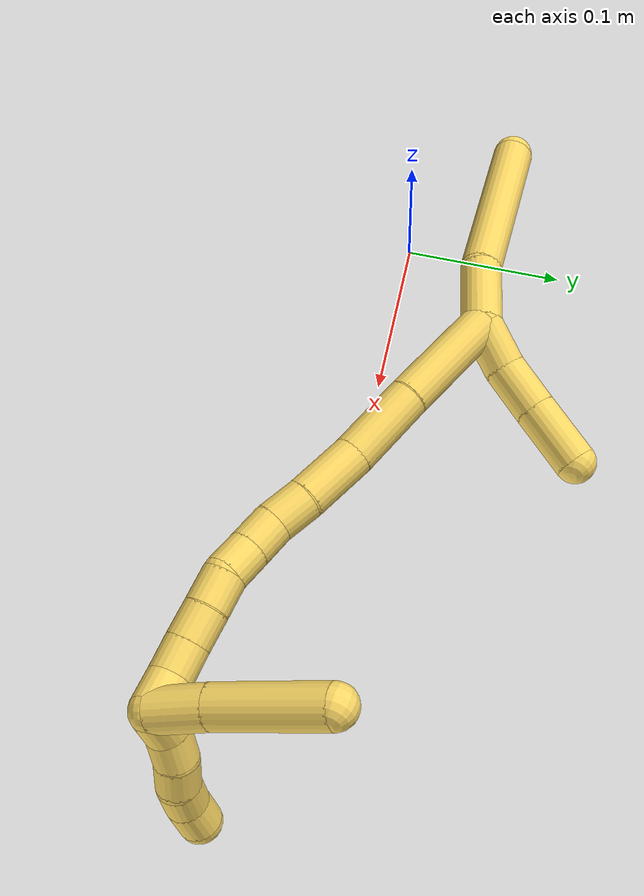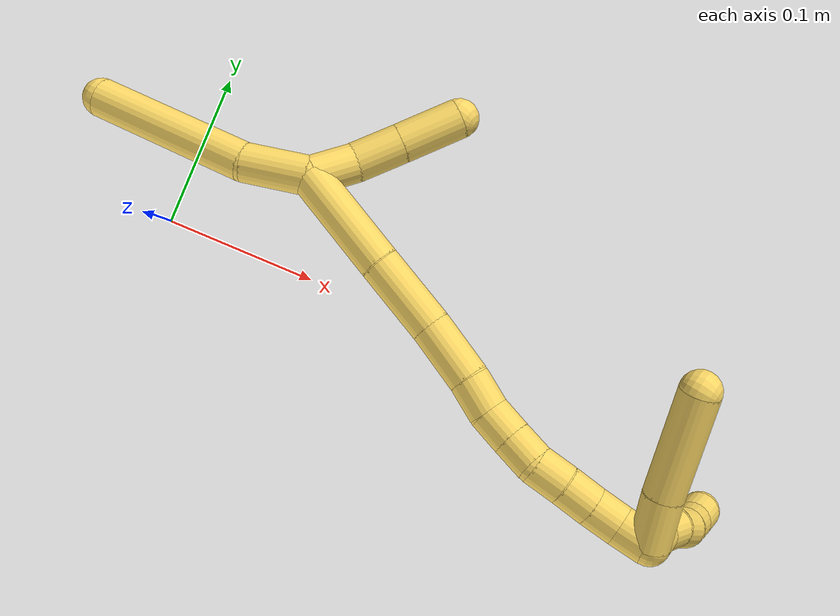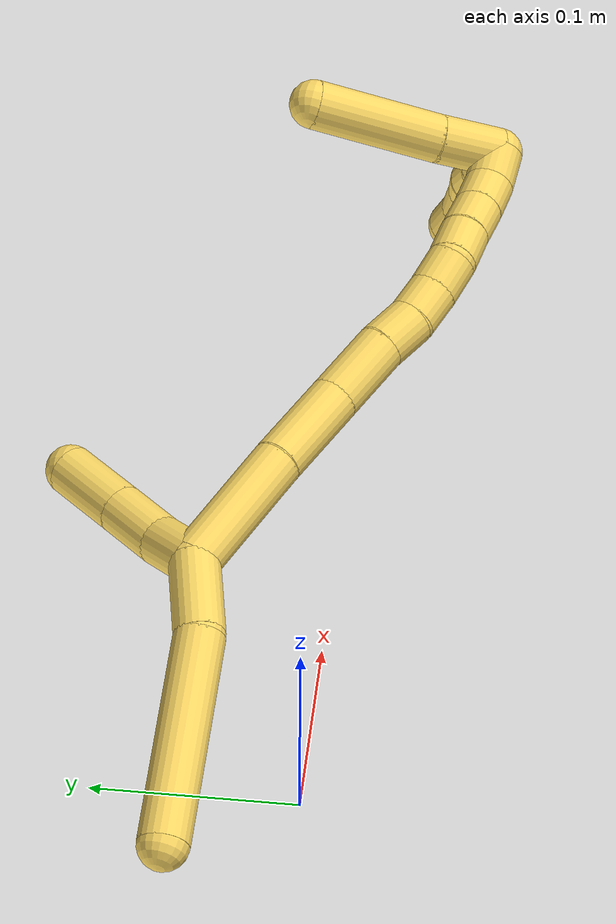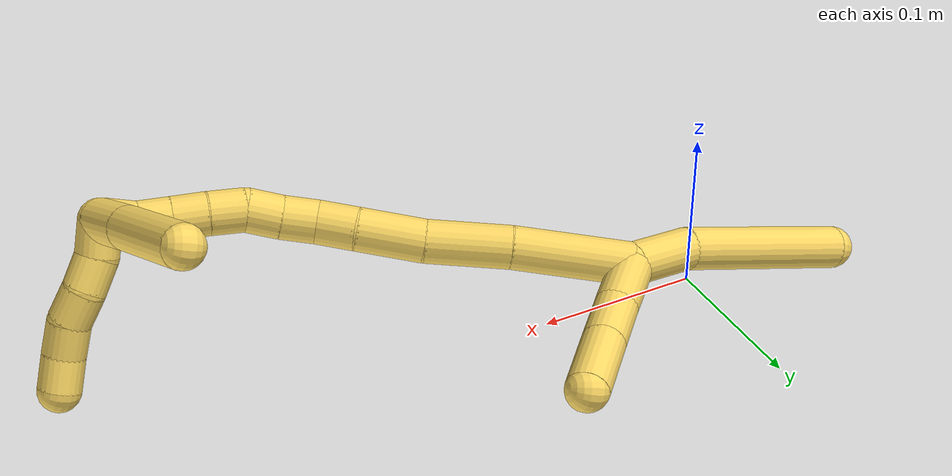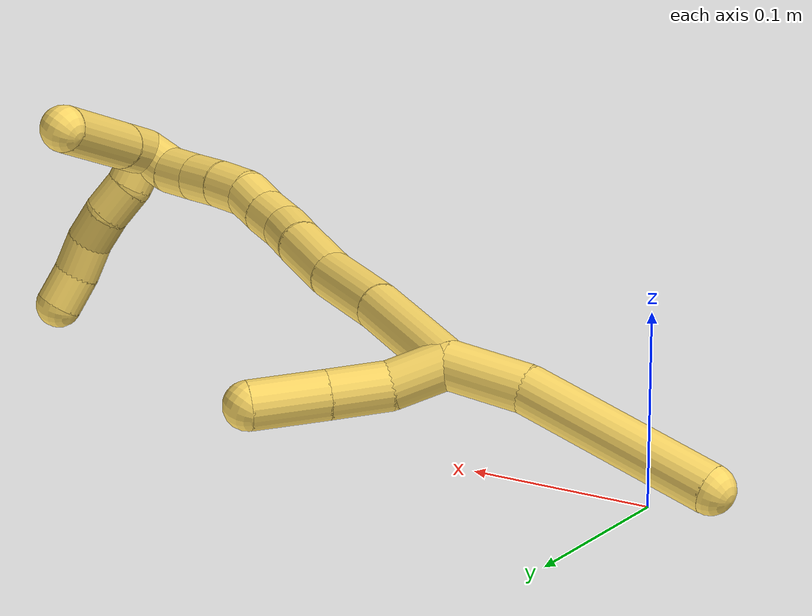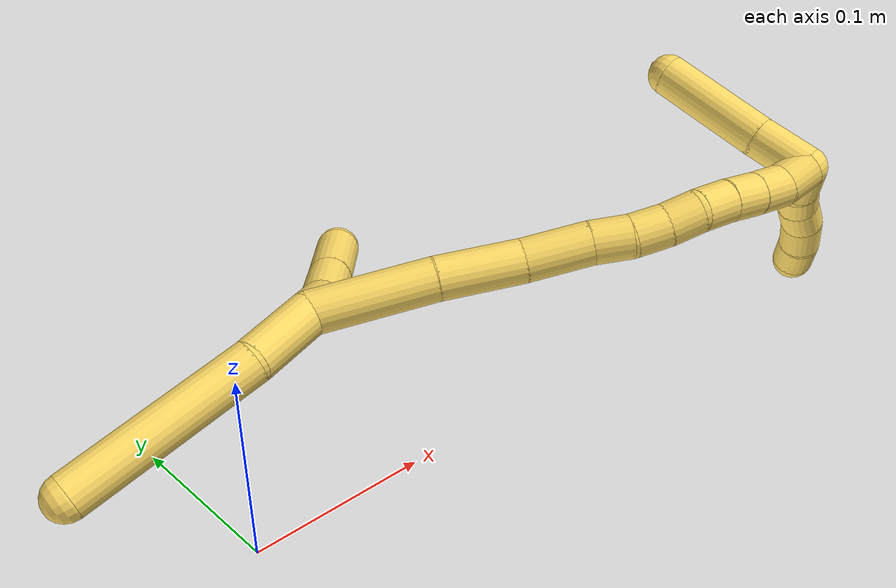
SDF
<sdf version="1.7">
 <world name="default">
  <model name="5">
   <static>0</static>
   <link name="5">
    <collision name="collision-cylinder-e_1_2_8">
     <pose>0.001297 -0.006946 -0.020059 2.80825 0.061003 0.358824</pose>
     <geometry><cylinder><radius>0.0125</radius><length>0.042534</length></cylinder></geometry>
     <surface>
      <friction><ode><mu>1.16</mu><mu2>1.16</mu2><slip1>0</slip1><slip2>0</slip2></ode></friction>
      <contact><ode><kp>1e+06</kp><kd>1</kd><max_vel>0</max_vel><min_depth>0.001</min_depth></ode></contact>
     </surface>
    </collision>
    <visual name="visual-cylinder-e_1_2_8">
     <pose>0.001297 -0.006946 -0.020059 2.80825 0.061003 0.358824</pose>
     <geometry><cylinder><radius>0.0125</radius><length>0.042534</length></cylinder></geometry>
     <material><ambient>1 0.858824 0.4 1</ambient></material>
    </visual>
    <collision name="collision-cylinder-e_2_8_6">
     <pose>0.00397 -0.019077 -0.093582 3.04489 0.025633 0.517871</pose>
     <geometry><cylinder><radius>0.0125</radius><length>0.107466</length></cylinder></geometry>
     <surface>
      <friction><ode><mu>1.16</mu><mu2>1.16</mu2><slip1>0</slip1><slip2>0</slip2></ode></friction>
      <contact><ode><kp>1e+06</kp><kd>1</kd><max_vel>0</max_vel><min_depth>0.001</min_depth></ode></contact>
     </surface>
    </collision>
    <visual name="visual-cylinder-e_2_8_6">
     <pose>0.00397 -0.019077 -0.093582 3.04489 0.025633 0.517871</pose>
     <geometry><cylinder><radius>0.0125</radius><length>0.107466</length></cylinder></geometry>
     <material><ambient>1 0.858824 0.4 1</ambient></material>
    </visual>
    <collision name="collision-cylinder-e_1_2_9">
     <pose>0.000793 0.01289 0.007146 -1.06459 0.05372 -0.031646</pose>
     <geometry><cylinder><radius>0.0125</radius><length>0.02952</length></cylinder></geometry>
     <surface>
      <friction><ode><mu>1.16</mu><mu2>1.16</mu2><slip1>0</slip1><slip2>0</slip2></ode></friction>
      <contact><ode><kp>1e+06</kp><kd>1</kd><max_vel>0</max_vel><min_depth>0.001</min_depth></ode></contact>
     </surface>
    </collision>
    <visual name="visual-cylinder-e_1_2_9">
     <pose>0.000793 0.01289 0.007146 -1.06459 0.05372 -0.031646</pose>
     <geometry><cylinder><radius>0.0125</radius><length>0.02952</length></cylinder></geometry>
     <material><ambient>1 0.858824 0.4 1</ambient></material>
    </visual>
    <collision name="collision-cylinder-e_2_9_10">
     <pose>-0.001634 0.038548 0.022601 -0.993904 -0.208241 0.113229</pose>
     <geometry><cylinder><radius>0.0125</radius><length>0.031138</length></cylinder></geometry>
     <surface>
      <friction><ode><mu>1.16</mu><mu2>1.16</mu2><slip1>0</slip1><slip2>0</slip2></ode></friction>
      <contact><ode><kp>1e+06</kp><kd>1</kd><max_vel>0</max_vel><min_depth>0.001</min_depth></ode></contact>
     </surface>
    </collision>
    <visual name="visual-cylinder-e_2_9_10">
     <pose>-0.001634 0.038548 0.022601 -0.993904 -0.208241 0.113229</pose>
     <geometry><cylinder><radius>0.0125</radius><length>0.031138</length></cylinder></geometry>
     <material><ambient>1 0.858824 0.4 1</ambient></material>
    </visual>
    <collision name="collision-cylinder-e_3_10_5">
     <pose>-0.0092 0.067422 0.041331 -0.996488 -0.222859 0.121595</pose>
     <geometry><cylinder><radius>0.0125</radius><length>0.039342</length></cylinder></geometry>
     <surface>
      <friction><ode><mu>1.16</mu><mu2>1.16</mu2><slip1>0</slip1><slip2>0</slip2></ode></friction>
      <contact><ode><kp>1e+06</kp><kd>1</kd><max_vel>0</max_vel><min_depth>0.001</min_depth></ode></contact>
     </surface>
    </collision>
    <visual name="visual-cylinder-e_3_10_5">
     <pose>-0.0092 0.067422 0.041331 -0.996488 -0.222859 0.121595</pose>
     <geometry><cylinder><radius>0.0125</radius><length>0.039342</length></cylinder></geometry>
     <material><ambient>1 0.858824 0.4 1</ambient></material>
    </visual>
    <collision name="collision-cylinder-e_1_2_11">
     <pose>0.010355 -0.007677 0.03203 0.235232 0.304602 0.036269</pose>
     <geometry><cylinder><radius>0.0125</radius><length>0.069053</length></cylinder></geometry>
     <surface>
      <friction><ode><mu>1.16</mu><mu2>1.16</mu2><slip1>0</slip1><slip2>0</slip2></ode></friction>
      <contact><ode><kp>1e+06</kp><kd>1</kd><max_vel>0</max_vel><min_depth>0.001</min_depth></ode></contact>
     </surface>
    </collision>
    <visual name="visual-cylinder-e_1_2_11">
     <pose>0.010355 -0.007677 0.03203 0.235232 0.304602 0.036269</pose>
     <geometry><cylinder><radius>0.0125</radius><length>0.069053</length></cylinder></geometry>
     <material><ambient>1 0.858824 0.4 1</ambient></material>
    </visual>
    <collision name="collision-cylinder-e_2_11_12">
     <pose>0.029459 -0.019737 0.086263 0.194926 0.368893 0.036478</pose>
     <geometry><cylinder><radius>0.0125</radius><length>0.048526</length></cylinder></geometry>
     <surface>
      <friction><ode><mu>1.16</mu><mu2>1.16</mu2><slip1>0</slip1><slip2>0</slip2></ode></friction>
      <contact><ode><kp>1e+06</kp><kd>1</kd><max_vel>0</max_vel><min_depth>0.001</min_depth></ode></contact>
     </surface>
    </collision>
    <visual name="visual-cylinder-e_2_11_12">
     <pose>0.029459 -0.019737 0.086263 0.194926 0.368893 0.036478</pose>
     <geometry><cylinder><radius>0.0125</radius><length>0.048526</length></cylinder></geometry>
     <material><ambient>1 0.858824 0.4 1</ambient></material>
    </visual>
    <collision name="collision-cylinder-e_3_12_13">
     <pose>0.043994 -0.029288 0.126079 0.285373 0.305375 0.044208</pose>
     <geometry><cylinder><radius>0.0125</radius><length>0.038493</length></cylinder></geometry>
     <surface>
      <friction><ode><mu>1.16</mu><mu2>1.16</mu2><slip1>0</slip1><slip2>0</slip2></ode></friction>
      <contact><ode><kp>1e+06</kp><kd>1</kd><max_vel>0</max_vel><min_depth>0.001</min_depth></ode></contact>
     </surface>
    </collision>
    <visual name="visual-cylinder-e_3_12_13">
     <pose>0.043994 -0.029288 0.126079 0.285373 0.305375 0.044208</pose>
     <geometry><cylinder><radius>0.0125</radius><length>0.038493</length></cylinder></geometry>
     <material><ambient>1 0.858824 0.4 1</ambient></material>
    </visual>
    <collision name="collision-cylinder-e_4_13_14">
     <pose>0.054145 -0.03799 0.153493 0.346146 0.396715 0.07025</pose>
     <geometry><cylinder><radius>0.0125</radius><length>0.022591</length></cylinder></geometry>
     <surface>
      <friction><ode><mu>1.16</mu><mu2>1.16</mu2><slip1>0</slip1><slip2>0</slip2></ode></friction>
      <contact><ode><kp>1e+06</kp><kd>1</kd><max_vel>0</max_vel><min_depth>0.001</min_depth></ode></contact>
     </surface>
    </collision>
    <visual name="visual-cylinder-e_4_13_14">
     <pose>0.054145 -0.03799 0.153493 0.346146 0.396715 0.07025</pose>
     <geometry><cylinder><radius>0.0125</radius><length>0.022591</length></cylinder></geometry>
     <material><ambient>1 0.858824 0.4 1</ambient></material>
    </visual>
    <collision name="collision-cylinder-e_5_14_15">
     <pose>0.061191 -0.043517 0.172953 0.203457 0.26547 0.027258</pose>
     <geometry><cylinder><radius>0.0125</radius><length>0.020442</length></cylinder></geometry>
     <surface>
      <friction><ode><mu>1.16</mu><mu2>1.16</mu2><slip1>0</slip1><slip2>0</slip2></ode></friction>
      <contact><ode><kp>1e+06</kp><kd>1</kd><max_vel>0</max_vel><min_depth>0.001</min_depth></ode></contact>
     </surface>
    </collision>
    <visual name="visual-cylinder-e_5_14_15">
     <pose>0.061191 -0.043517 0.172953 0.203457 0.26547 0.027258</pose>
     <geometry><cylinder><radius>0.0125</radius><length>0.020442</length></cylinder></geometry>
     <material><ambient>1 0.858824 0.4 1</ambient></material>
    </visual>
    <collision name="collision-cylinder-e_6_15_16">
     <pose>0.065469 -0.047784 0.192304 0.230475 0.158946 0.018436</pose>
     <geometry><cylinder><radius>0.0125</radius><length>0.020164</length></cylinder></geometry>
     <surface>
      <friction><ode><mu>1.16</mu><mu2>1.16</mu2><slip1>0</slip1><slip2>0</slip2></ode></friction>
      <contact><ode><kp>1e+06</kp><kd>1</kd><max_vel>0</max_vel><min_depth>0.001</min_depth></ode></contact>
     </surface>
    </collision>
    <visual name="visual-cylinder-e_6_15_16">
     <pose>0.065469 -0.047784 0.192304 0.230475 0.158946 0.018436</pose>
     <geometry><cylinder><radius>0.0125</radius><length>0.020164</length></cylinder></geometry>
     <material><ambient>1 0.858824 0.4 1</ambient></material>
    </visual>
    <collision name="collision-cylinder-e_7_16_17">
     <pose>0.069799 -0.049399 0.211943 -0.066186 0.267749 -0.008917</pose>
     <geometry><cylinder><radius>0.0125</radius><length>0.020675</length></cylinder></geometry>
     <surface>
      <friction><ode><mu>1.16</mu><mu2>1.16</mu2><slip1>0</slip1><slip2>0</slip2></ode></friction>
      <contact><ode><kp>1e+06</kp><kd>1</kd><max_vel>0</max_vel><min_depth>0.001</min_depth></ode></contact>
     </surface>
    </collision>
    <visual name="visual-cylinder-e_7_16_17">
     <pose>0.069799 -0.049399 0.211943 -0.066186 0.267749 -0.008917</pose>
     <geometry><cylinder><radius>0.0125</radius><length>0.020675</length></cylinder></geometry>
     <material><ambient>1 0.858824 0.4 1</ambient></material>
    </visual>
    <collision name="collision-cylinder-e_8_17_18">
     <pose>0.07587 -0.04801 0.231298 -0.077445 0.339849 -0.013294</pose>
     <geometry><cylinder><radius>0.0125</radius><length>0.020016</length></cylinder></geometry>
     <surface>
      <friction><ode><mu>1.16</mu><mu2>1.16</mu2><slip1>0</slip1><slip2>0</slip2></ode></friction>
      <contact><ode><kp>1e+06</kp><kd>1</kd><max_vel>0</max_vel><min_depth>0.001</min_depth></ode></contact>
     </surface>
    </collision>
    <visual name="visual-cylinder-e_8_17_18">
     <pose>0.07587 -0.04801 0.231298 -0.077445 0.339849 -0.013294</pose>
     <geometry><cylinder><radius>0.0125</radius><length>0.020016</length></cylinder></geometry>
     <material><ambient>1 0.858824 0.4 1</ambient></material>
    </visual>
    <collision name="collision-cylinder-e_9_18_19">
     <pose>0.082109 -0.046394 0.250251 -0.09252 0.293962 -0.013707</pose>
     <geometry><cylinder><radius>0.0125</radius><length>0.020033</length></cylinder></geometry>
     <surface>
      <friction><ode><mu>1.16</mu><mu2>1.16</mu2><slip1>0</slip1><slip2>0</slip2></ode></friction>
      <contact><ode><kp>1e+06</kp><kd>1</kd><max_vel>0</max_vel><min_depth>0.001</min_depth></ode></contact>
     </surface>
    </collision>
    <visual name="visual-cylinder-e_9_18_19">
     <pose>0.082109 -0.046394 0.250251 -0.09252 0.293962 -0.013707</pose>
     <geometry><cylinder><radius>0.0125</radius><length>0.020033</length></cylinder></geometry>
     <material><ambient>1 0.858824 0.4 1</ambient></material>
    </visual>
    <collision name="collision-cylinder-e_10_19_1">
     <pose>0.08505 -0.045737 0.269797 0.02289 0.00392 4.5e-05</pose>
     <geometry><cylinder><radius>0.0125</radius><length>0.020006</length></cylinder></geometry>
     <surface>
      <friction><ode><mu>1.16</mu><mu2>1.16</mu2><slip1>0</slip1><slip2>0</slip2></ode></friction>
      <contact><ode><kp>1e+06</kp><kd>1</kd><max_vel>0</max_vel><min_depth>0.001</min_depth></ode></contact>
     </surface>
    </collision>
    <visual name="visual-cylinder-e_10_19_1">
     <pose>0.08505 -0.045737 0.269797 0.02289 0.00392 4.5e-05</pose>
     <geometry><cylinder><radius>0.0125</radius><length>0.020006</length></cylinder></geometry>
     <material><ambient>1 0.858824 0.4 1</ambient></material>
    </visual>
    <collision name="collision-cylinder-e_1_1_20">
     <pose>0.071521 -0.037242 0.276655 -1.91651 -0.97127 1.28839</pose>
     <geometry><cylinder><radius>0.0125</radius><length>0.032869</length></cylinder></geometry>
     <surface>
      <friction><ode><mu>1.16</mu><mu2>1.16</mu2><slip1>0</slip1><slip2>0</slip2></ode></friction>
      <contact><ode><kp>1e+06</kp><kd>1</kd><max_vel>0</max_vel><min_depth>0.001</min_depth></ode></contact>
     </surface>
    </collision>
    <visual name="visual-cylinder-e_1_1_20">
     <pose>0.071521 -0.037242 0.276655 -1.91651 -0.97127 1.28839</pose>
     <geometry><cylinder><radius>0.0125</radius><length>0.032869</length></cylinder></geometry>
     <material><ambient>1 0.858824 0.4 1</ambient></material>
    </visual>
    <collision name="collision-cylinder-e_2_20_4">
     <pose>0.030209 -0.010212 0.268837 -1.82084 -0.972946 1.1956</pose>
     <geometry><cylinder><radius>0.0125</radius><length>0.067131</length></cylinder></geometry>
     <surface>
      <friction><ode><mu>1.16</mu><mu2>1.16</mu2><slip1>0</slip1><slip2>0</slip2></ode></friction>
      <contact><ode><kp>1e+06</kp><kd>1</kd><max_vel>0</max_vel><min_depth>0.001</min_depth></ode></contact>
     </surface>
    </collision>
    <visual name="visual-cylinder-e_2_20_4">
     <pose>0.030209 -0.010212 0.268837 -1.82084 -0.972946 1.1956</pose>
     <geometry><cylinder><radius>0.0125</radius><length>0.067131</length></cylinder></geometry>
     <material><ambient>1 0.858824 0.4 1</ambient></material>
    </visual>
    <collision name="collision-cylinder-e_1_1_21">
     <pose>0.091027 -0.037926 0.279492 -1.60878 0.635706 -0.658613</pose>
     <geometry><cylinder><radius>0.0125</radius><length>0.02</length></cylinder></geometry>
     <surface>
      <friction><ode><mu>1.16</mu><mu2>1.16</mu2><slip1>0</slip1><slip2>0</slip2></ode></friction>
      <contact><ode><kp>1e+06</kp><kd>1</kd><max_vel>0</max_vel><min_depth>0.001</min_depth></ode></contact>
     </surface>
    </collision>
    <visual name="visual-cylinder-e_1_1_21">
     <pose>0.091027 -0.037926 0.279492 -1.60878 0.635706 -0.658613</pose>
     <geometry><cylinder><radius>0.0125</radius><length>0.02</length></cylinder></geometry>
     <material><ambient>1 0.858824 0.4 1</ambient></material>
    </visual>
    <collision name="collision-cylinder-e_2_21_22">
     <pose>0.102849 -0.022179 0.281632 -1.26344 0.629184 -0.467514</pose>
     <geometry><cylinder><radius>0.0125</radius><length>0.02</length></cylinder></geometry>
     <surface>
      <friction><ode><mu>1.16</mu><mu2>1.16</mu2><slip1>0</slip1><slip2>0</slip2></ode></friction>
      <contact><ode><kp>1e+06</kp><kd>1</kd><max_vel>0</max_vel><min_depth>0.001</min_depth></ode></contact>
     </surface>
    </collision>
    <visual name="visual-cylinder-e_2_21_22">
     <pose>0.102849 -0.022179 0.281632 -1.26344 0.629184 -0.467514</pose>
     <geometry><cylinder><radius>0.0125</radius><length>0.02</length></cylinder></geometry>
     <material><ambient>1 0.858824 0.4 1</ambient></material>
    </visual>
    <collision name="collision-cylinder-e_3_22_23">
     <pose>0.116161 -0.008223 0.286482 -1.20361 0.837146 -0.593041</pose>
     <geometry><cylinder><radius>0.0125</radius><length>0.02</length></cylinder></geometry>
     <surface>
      <friction><ode><mu>1.16</mu><mu2>1.16</mu2><slip1>0</slip1><slip2>0</slip2></ode></friction>
      <contact><ode><kp>1e+06</kp><kd>1</kd><max_vel>0</max_vel><min_depth>0.001</min_depth></ode></contact>
     </surface>
    </collision>
    <visual name="visual-cylinder-e_3_22_23">
     <pose>0.116161 -0.008223 0.286482 -1.20361 0.837146 -0.593041</pose>
     <geometry><cylinder><radius>0.0125</radius><length>0.02</length></cylinder></geometry>
     <material><ambient>1 0.858824 0.4 1</ambient></material>
    </visual>
    <collision name="collision-cylinder-e_4_23_24">
     <pose>0.130678 0.005079 0.288902 -1.56844 0.787982 -0.78631</pose>
     <geometry><cylinder><radius>0.0125</radius><length>0.02</length></cylinder></geometry>
     <surface>
      <friction><ode><mu>1.16</mu><mu2>1.16</mu2><slip1>0</slip1><slip2>0</slip2></ode></friction>
      <contact><ode><kp>1e+06</kp><kd>1</kd><max_vel>0</max_vel><min_depth>0.001</min_depth></ode></contact>
     </surface>
    </collision>
    <visual name="visual-cylinder-e_4_23_24">
     <pose>0.130678 0.005079 0.288902 -1.56844 0.787982 -0.78631</pose>
     <geometry><cylinder><radius>0.0125</radius><length>0.02</length></cylinder></geometry>
     <material><ambient>1 0.858824 0.4 1</ambient></material>
    </visual>
    <collision name="collision-cylinder-e_5_24_3">
     <pose>0.143476 0.020341 0.289062 -1.55339 0.607594 -0.597728</pose>
     <geometry><cylinder><radius>0.0125</radius><length>0.02</length></cylinder></geometry>
     <surface>
      <friction><ode><mu>1.16</mu><mu2>1.16</mu2><slip1>0</slip1><slip2>0</slip2></ode></friction>
      <contact><ode><kp>1e+06</kp><kd>1</kd><max_vel>0</max_vel><min_depth>0.001</min_depth></ode></contact>
     </surface>
    </collision>
    <visual name="visual-cylinder-e_5_24_3">
     <pose>0.143476 0.020341 0.289062 -1.55339 0.607594 -0.597728</pose>
     <geometry><cylinder><radius>0.0125</radius><length>0.02</length></cylinder></geometry>
     <material><ambient>1 0.858824 0.4 1</ambient></material>
    </visual>
    <collision name="collision-sphere-3">
     <pose>0.149185 0.02855 0.289205 0 -0 0</pose>
     <geometry><sphere><radius>0.0125</radius></sphere></geometry>
     <surface>
      <friction><ode><mu>1.16</mu><mu2>1.16</mu2><slip1>0</slip1><slip2>0</slip2></ode></friction>
      <contact><ode><kp>1e+06</kp><kd>1</kd><max_vel>0</max_vel><min_depth>0.001</min_depth></ode></contact>
     </surface>
    </collision>
    <visual name="visual-sphere-3">
     <pose>0.149185 0.02855 0.289205 0 -0 0</pose>
     <geometry><sphere><radius>0.0125</radius></sphere></geometry>
     <material><ambient>1 0.858824 0.4 1</ambient></material>
    </visual>
    <collision name="collision-sphere-24">
     <pose>0.137767 0.012132 0.288919 0 -0 0</pose>
     <geometry><sphere><radius>0.0125</radius></sphere></geometry>
     <surface>
      <friction><ode><mu>1.16</mu><mu2>1.16</mu2><slip1>0</slip1><slip2>0</slip2></ode></friction>
      <contact><ode><kp>1e+06</kp><kd>1</kd><max_vel>0</max_vel><min_depth>0.001</min_depth></ode></contact>
     </surface>
    </collision>
    <visual name="visual-sphere-24">
     <pose>0.137767 0.012132 0.288919 0 -0 0</pose>
     <geometry><sphere><radius>0.0125</radius></sphere></geometry>
     <material><ambient>1 0.858824 0.4 1</ambient></material>
    </visual>
    <collision name="collision-sphere-23">
     <pose>0.123589 -0.001973 0.288886 0 -0 0</pose>
     <geometry><sphere><radius>0.0125</radius></sphere></geometry>
     <surface>
      <friction><ode><mu>1.16</mu><mu2>1.16</mu2><slip1>0</slip1><slip2>0</slip2></ode></friction>
      <contact><ode><kp>1e+06</kp><kd>1</kd><max_vel>0</max_vel><min_depth>0.001</min_depth></ode></contact>
     </surface>
    </collision>
    <visual name="visual-sphere-23">
     <pose>0.123589 -0.001973 0.288886 0 -0 0</pose>
     <geometry><sphere><radius>0.0125</radius></sphere></geometry>
     <material><ambient>1 0.858824 0.4 1</ambient></material>
    </visual>
    <collision name="collision-sphere-22">
     <pose>0.108734 -0.014473 0.284078 0 -0 0</pose>
     <geometry><sphere><radius>0.0125</radius></sphere></geometry>
     <surface>
      <friction><ode><mu>1.16</mu><mu2>1.16</mu2><slip1>0</slip1><slip2>0</slip2></ode></friction>
      <contact><ode><kp>1e+06</kp><kd>1</kd><max_vel>0</max_vel><min_depth>0.001</min_depth></ode></contact>
     </surface>
    </collision>
    <visual name="visual-sphere-22">
     <pose>0.108734 -0.014473 0.284078 0 -0 0</pose>
     <geometry><sphere><radius>0.0125</radius></sphere></geometry>
     <material><ambient>1 0.858824 0.4 1</ambient></material>
    </visual>
    <collision name="collision-sphere-21">
     <pose>0.096964 -0.029885 0.279186 0 -0 0</pose>
     <geometry><sphere><radius>0.0125</radius></sphere></geometry>
     <surface>
      <friction><ode><mu>1.16</mu><mu2>1.16</mu2><slip1>0</slip1><slip2>0</slip2></ode></friction>
      <contact><ode><kp>1e+06</kp><kd>1</kd><max_vel>0</max_vel><min_depth>0.001</min_depth></ode></contact>
     </surface>
    </collision>
    <visual name="visual-sphere-21">
     <pose>0.096964 -0.029885 0.279186 0 -0 0</pose>
     <geometry><sphere><radius>0.0125</radius></sphere></geometry>
     <material><ambient>1 0.858824 0.4 1</ambient></material>
    </visual>
    <collision name="collision-sphere-4">
     <pose>0.002466 0.008093 0.264162 0 -0 0</pose>
     <geometry><sphere><radius>0.0125</radius></sphere></geometry>
     <surface>
      <friction><ode><mu>1.16</mu><mu2>1.16</mu2><slip1>0</slip1><slip2>0</slip2></ode></friction>
      <contact><ode><kp>1e+06</kp><kd>1</kd><max_vel>0</max_vel><min_depth>0.001</min_depth></ode></contact>
     </surface>
    </collision>
    <visual name="visual-sphere-4">
     <pose>0.002466 0.008093 0.264162 0 -0 0</pose>
     <geometry><sphere><radius>0.0125</radius></sphere></geometry>
     <material><ambient>1 0.858824 0.4 1</ambient></material>
    </visual>
    <collision name="collision-sphere-20">
     <pose>0.057953 -0.028517 0.273513 0 -0 0</pose>
     <geometry><sphere><radius>0.0125</radius></sphere></geometry>
     <surface>
      <friction><ode><mu>1.16</mu><mu2>1.16</mu2><slip1>0</slip1><slip2>0</slip2></ode></friction>
      <contact><ode><kp>1e+06</kp><kd>1</kd><max_vel>0</max_vel><min_depth>0.001</min_depth></ode></contact>
     </surface>
    </collision>
    <visual name="visual-sphere-20">
     <pose>0.057953 -0.028517 0.273513 0 -0 0</pose>
     <geometry><sphere><radius>0.0125</radius></sphere></geometry>
     <material><ambient>1 0.858824 0.4 1</ambient></material>
    </visual>
    <collision name="collision-sphere-5">
     <pose>-0.013548 0.083529 0.051753 0 -0 0</pose>
     <geometry><sphere><radius>0.0125</radius></sphere></geometry>
     <surface>
      <friction><ode><mu>1.16</mu><mu2>1.16</mu2><slip1>0</slip1><slip2>0</slip2></ode></friction>
      <contact><ode><kp>1e+06</kp><kd>1</kd><max_vel>0</max_vel><min_depth>0.001</min_depth></ode></contact>
     </surface>
    </collision>
    <visual name="visual-sphere-5">
     <pose>-0.013548 0.083529 0.051753 0 -0 0</pose>
     <geometry><sphere><radius>0.0125</radius></sphere></geometry>
     <material><ambient>1 0.858824 0.4 1</ambient></material>
    </visual>
    <collision name="collision-sphere-10">
     <pose>-0.004852 0.051316 0.030909 0 -0 0</pose>
     <geometry><sphere><radius>0.0125</radius></sphere></geometry>
     <surface>
      <friction><ode><mu>1.16</mu><mu2>1.16</mu2><slip1>0</slip1><slip2>0</slip2></ode></friction>
      <contact><ode><kp>1e+06</kp><kd>1</kd><max_vel>0</max_vel><min_depth>0.001</min_depth></ode></contact>
     </surface>
    </collision>
    <visual name="visual-sphere-10">
     <pose>-0.004852 0.051316 0.030909 0 -0 0</pose>
     <geometry><sphere><radius>0.0125</radius></sphere></geometry>
     <material><ambient>1 0.858824 0.4 1</ambient></material>
    </visual>
    <collision name="collision-sphere-6">
     <pose>0.005347 -0.024264 -0.147047 0 -0 0</pose>
     <geometry><sphere><radius>0.0125</radius></sphere></geometry>
     <surface>
      <friction><ode><mu>1.16</mu><mu2>1.16</mu2><slip1>0</slip1><slip2>0</slip2></ode></friction>
      <contact><ode><kp>1e+06</kp><kd>1</kd><max_vel>0</max_vel><min_depth>0.001</min_depth></ode></contact>
     </surface>
    </collision>
    <visual name="visual-sphere-6">
     <pose>0.005347 -0.024264 -0.147047 0 -0 0</pose>
     <geometry><sphere><radius>0.0125</radius></sphere></geometry>
     <material><ambient>1 0.858824 0.4 1</ambient></material>
    </visual>
    <collision name="collision-sphere-9">
     <pose>0.001585 0.025781 0.014293 0 -0 0</pose>
     <geometry><sphere><radius>0.0125</radius></sphere></geometry>
     <surface>
      <friction><ode><mu>1.16</mu><mu2>1.16</mu2><slip1>0</slip1><slip2>0</slip2></ode></friction>
      <contact><ode><kp>1e+06</kp><kd>1</kd><max_vel>0</max_vel><min_depth>0.001</min_depth></ode></contact>
     </surface>
    </collision>
    <visual name="visual-sphere-9">
     <pose>0.001585 0.025781 0.014293 0 -0 0</pose>
     <geometry><sphere><radius>0.0125</radius></sphere></geometry>
     <material><ambient>1 0.858824 0.4 1</ambient></material>
    </visual>
    <collision name="collision-sphere-2">
     <geometry><sphere><radius>0.0125</radius></sphere></geometry>
     <surface>
      <friction><ode><mu>1.16</mu><mu2>1.16</mu2><slip1>0</slip1><slip2>0</slip2></ode></friction>
      <contact><ode><kp>1e+06</kp><kd>1</kd><max_vel>0</max_vel><min_depth>0.001</min_depth></ode></contact>
     </surface>
    </collision>
    <visual name="visual-sphere-2">
     <geometry><sphere><radius>0.0125</radius></sphere></geometry>
     <material><ambient>1 0.858824 0.4 1</ambient></material>
    </visual>
    <collision name="collision-sphere-19">
     <pose>0.085011 -0.045508 0.259797 0 -0 0</pose>
     <geometry><sphere><radius>0.0125</radius></sphere></geometry>
     <surface>
      <friction><ode><mu>1.16</mu><mu2>1.16</mu2><slip1>0</slip1><slip2>0</slip2></ode></friction>
      <contact><ode><kp>1e+06</kp><kd>1</kd><max_vel>0</max_vel><min_depth>0.001</min_depth></ode></contact>
     </surface>
    </collision>
    <visual name="visual-sphere-19">
     <pose>0.085011 -0.045508 0.259797 0 -0 0</pose>
     <geometry><sphere><radius>0.0125</radius></sphere></geometry>
     <material><ambient>1 0.858824 0.4 1</ambient></material>
    </visual>
    <collision name="collision-sphere-8">
     <pose>0.002593 -0.013891 -0.040118 0 -0 0</pose>
     <geometry><sphere><radius>0.0125</radius></sphere></geometry>
     <surface>
      <friction><ode><mu>1.16</mu><mu2>1.16</mu2><slip1>0</slip1><slip2>0</slip2></ode></friction>
      <contact><ode><kp>1e+06</kp><kd>1</kd><max_vel>0</max_vel><min_depth>0.001</min_depth></ode></contact>
     </surface>
    </collision>
    <visual name="visual-sphere-8">
     <pose>0.002593 -0.013891 -0.040118 0 -0 0</pose>
     <geometry><sphere><radius>0.0125</radius></sphere></geometry>
     <material><ambient>1 0.858824 0.4 1</ambient></material>
    </visual>
    <collision name="collision-sphere-11">
     <pose>0.02071 -0.015353 0.06406 0 -0 0</pose>
     <geometry><sphere><radius>0.0125</radius></sphere></geometry>
     <surface>
      <friction><ode><mu>1.16</mu><mu2>1.16</mu2><slip1>0</slip1><slip2>0</slip2></ode></friction>
      <contact><ode><kp>1e+06</kp><kd>1</kd><max_vel>0</max_vel><min_depth>0.001</min_depth></ode></contact>
     </surface>
    </collision>
    <visual name="visual-sphere-11">
     <pose>0.02071 -0.015353 0.06406 0 -0 0</pose>
     <geometry><sphere><radius>0.0125</radius></sphere></geometry>
     <material><ambient>1 0.858824 0.4 1</ambient></material>
    </visual>
    <collision name="collision-sphere-12">
     <pose>0.038208 -0.02412 0.108465 0 -0 0</pose>
     <geometry><sphere><radius>0.0125</radius></sphere></geometry>
     <surface>
      <friction><ode><mu>1.16</mu><mu2>1.16</mu2><slip1>0</slip1><slip2>0</slip2></ode></friction>
      <contact><ode><kp>1e+06</kp><kd>1</kd><max_vel>0</max_vel><min_depth>0.001</min_depth></ode></contact>
     </surface>
    </collision>
    <visual name="visual-sphere-12">
     <pose>0.038208 -0.02412 0.108465 0 -0 0</pose>
     <geometry><sphere><radius>0.0125</radius></sphere></geometry>
     <material><ambient>1 0.858824 0.4 1</ambient></material>
    </visual>
    <collision name="collision-sphere-13">
     <pose>0.049781 -0.034455 0.143692 0 -0 0</pose>
     <geometry><sphere><radius>0.0125</radius></sphere></geometry>
     <surface>
      <friction><ode><mu>1.16</mu><mu2>1.16</mu2><slip1>0</slip1><slip2>0</slip2></ode></friction>
      <contact><ode><kp>1e+06</kp><kd>1</kd><max_vel>0</max_vel><min_depth>0.001</min_depth></ode></contact>
     </surface>
    </collision>
    <visual name="visual-sphere-13">
     <pose>0.049781 -0.034455 0.143692 0 -0 0</pose>
     <geometry><sphere><radius>0.0125</radius></sphere></geometry>
     <material><ambient>1 0.858824 0.4 1</ambient></material>
    </visual>
    <collision name="collision-sphere-14">
     <pose>0.05851 -0.041524 0.163293 0 -0 0</pose>
     <geometry><sphere><radius>0.0125</radius></sphere></geometry>
     <surface>
      <friction><ode><mu>1.16</mu><mu2>1.16</mu2><slip1>0</slip1><slip2>0</slip2></ode></friction>
      <contact><ode><kp>1e+06</kp><kd>1</kd><max_vel>0</max_vel><min_depth>0.001</min_depth></ode></contact>
     </surface>
    </collision>
    <visual name="visual-sphere-14">
     <pose>0.05851 -0.041524 0.163293 0 -0 0</pose>
     <geometry><sphere><radius>0.0125</radius></sphere></geometry>
     <material><ambient>1 0.858824 0.4 1</ambient></material>
    </visual>
    <collision name="collision-sphere-15">
     <pose>0.063873 -0.04551 0.182612 0 -0 0</pose>
     <geometry><sphere><radius>0.0125</radius></sphere></geometry>
     <surface>
      <friction><ode><mu>1.16</mu><mu2>1.16</mu2><slip1>0</slip1><slip2>0</slip2></ode></friction>
      <contact><ode><kp>1e+06</kp><kd>1</kd><max_vel>0</max_vel><min_depth>0.001</min_depth></ode></contact>
     </surface>
    </collision>
    <visual name="visual-sphere-15">
     <pose>0.063873 -0.04551 0.182612 0 -0 0</pose>
     <geometry><sphere><radius>0.0125</radius></sphere></geometry>
     <material><ambient>1 0.858824 0.4 1</ambient></material>
    </visual>
    <collision name="collision-sphere-16">
     <pose>0.067064 -0.050059 0.201996 0 -0 0</pose>
     <geometry><sphere><radius>0.0125</radius></sphere></geometry>
     <surface>
      <friction><ode><mu>1.16</mu><mu2>1.16</mu2><slip1>0</slip1><slip2>0</slip2></ode></friction>
      <contact><ode><kp>1e+06</kp><kd>1</kd><max_vel>0</max_vel><min_depth>0.001</min_depth></ode></contact>
     </surface>
    </collision>
    <visual name="visual-sphere-16">
     <pose>0.067064 -0.050059 0.201996 0 -0 0</pose>
     <geometry><sphere><radius>0.0125</radius></sphere></geometry>
     <material><ambient>1 0.858824 0.4 1</ambient></material>
    </visual>
    <collision name="collision-sphere-17">
     <pose>0.072534 -0.04874 0.22189 0 -0 0</pose>
     <geometry><sphere><radius>0.0125</radius></sphere></geometry>
     <surface>
      <friction><ode><mu>1.16</mu><mu2>1.16</mu2><slip1>0</slip1><slip2>0</slip2></ode></friction>
      <contact><ode><kp>1e+06</kp><kd>1</kd><max_vel>0</max_vel><min_depth>0.001</min_depth></ode></contact>
     </surface>
    </collision>
    <visual name="visual-sphere-17">
     <pose>0.072534 -0.04874 0.22189 0 -0 0</pose>
     <geometry><sphere><radius>0.0125</radius></sphere></geometry>
     <material><ambient>1 0.858824 0.4 1</ambient></material>
    </visual>
    <collision name="collision-sphere-18">
     <pose>0.079206 -0.04728 0.240705 0 -0 0</pose>
     <geometry><sphere><radius>0.0125</radius></sphere></geometry>
     <surface>
      <friction><ode><mu>1.16</mu><mu2>1.16</mu2><slip1>0</slip1><slip2>0</slip2></ode></friction>
      <contact><ode><kp>1e+06</kp><kd>1</kd><max_vel>0</max_vel><min_depth>0.001</min_depth></ode></contact>
     </surface>
    </collision>
    <visual name="visual-sphere-18">
     <pose>0.079206 -0.04728 0.240705 0 -0 0</pose>
     <geometry><sphere><radius>0.0125</radius></sphere></geometry>
     <material><ambient>1 0.858824 0.4 1</ambient></material>
    </visual>
    <collision name="collision-sphere-1">
     <pose>0.085089 -0.045966 0.279797 0 -0 0</pose>
     <geometry><sphere><radius>0.0125</radius></sphere></geometry>
     <surface>
      <friction><ode><mu>1.16</mu><mu2>1.16</mu2><slip1>0</slip1><slip2>0</slip2></ode></friction>
      <contact><ode><kp>1e+06</kp><kd>1</kd><max_vel>0</max_vel><min_depth>0.001</min_depth></ode></contact>
     </surface>
    </collision>
    <visual name="visual-sphere-1">
     <pose>0.085089 -0.045966 0.279797 0 -0 0</pose>
     <geometry><sphere><radius>0.0125</radius></sphere></geometry>
     <material><ambient>1 0.858824 0.4 1</ambient></material>
    </visual>
    <inertial>
     <pose>0.040127 -0.013378 0.118449 0 -0 0</pose>
     <mass>0.75</mass>
     <inertia><ixx>0.000258</ixx><ixy>0</ixy><ixz>0</ixz><iyy>7.3e-05</iyy><iyz>0</iyz><izz>7e-06</izz></inertia>
    </inertial>
   </link>
   <pose>0.080249 0.058802 0.075801 -1.01413 0.945824 -1.24398</pose>
  </model>
 </world>
</sdf>
